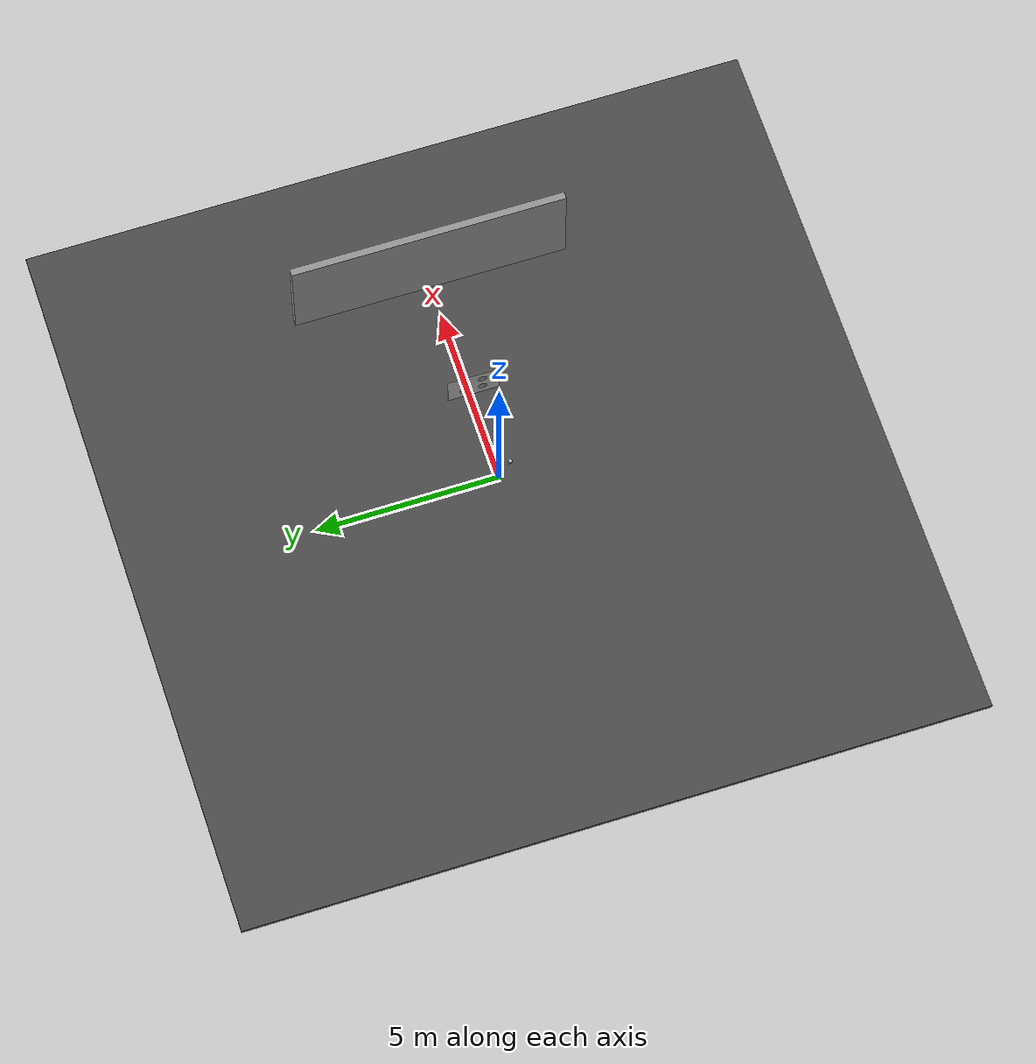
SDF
<sdf version="1.6">
 <world name="default">
  <light name="sun" type="directional">
   <pose>0 0 10 0 -0 0</pose>
   <diffuse>0.8 0.8 0.8 1</diffuse>
   <specular>0.1 0.1 0.1 1</specular>
   <attenuation>
    <range>1000</range>
    <constant>0.9</constant>
    <linear>0.01</linear>
    <quadratic>0.001</quadratic>
   </attenuation>
   <direction>-0.5 0.5 -1</direction>
  </light>
  <gravity>0 0 -9.8</gravity>
  <magnetic_field>6e-06 2.3e-05 -4.2e-05</magnetic_field>
  <atmosphere type="adiabatic"/>
  <physics name="default_physics" default="0" type="ode">
   <max_step_size>0.001</max_step_size>
   <real_time_factor>1</real_time_factor>
   <real_time_update_rate>1000</real_time_update_rate>
  </physics>
  <scene><ambient>0.4 0.4 0.4 1</ambient><background>0.7 0.7 0.7 1</background><shadows>1</shadows></scene>
  <spherical_coordinates>
   <surface_model>EARTH_WGS84</surface_model>
   <latitude_deg>0</latitude_deg>
   <longitude_deg>0</longitude_deg>
   <elevation>0</elevation>
   <heading_deg>0</heading_deg>
  </spherical_coordinates>
  <model name="asphalt_plane">
   <static>1</static>
   <link name="link">
    <collision name="collision"><geometry><box><size>20 20 0.1</size></box></geometry></collision>
    <visual name="visual">
     <cast_shadows>0</cast_shadows>
     <geometry><box><size>20 20 0.1</size></box></geometry>
     <material>
      <script>
       <uri>model://asphalt_plane/materials/scripts</uri>
       <uri>model://asphalt_plane/materials/textures</uri>
       <name>vrc/asphalt</name>
      </script>
     </material>
    </visual>
   </link>
   <pose>0 0 -0.05 0 -0 0</pose>
  </model>
  <model name="grey_wall">
   <static>1</static>
   <link name="link">
    <pose>0 0 1.4 0 -0 0</pose>
    <collision name="collision"><geometry><box><size>7.5 0.2 2.8</size></box></geometry></collision>
    <visual name="visual">
     <cast_shadows>0</cast_shadows>
     <geometry><box><size>7.5 0.2 2.8</size></box></geometry>
     <material>
      <script>
       <uri>model://grey_wall/materials/scripts</uri>
       <uri>model://grey_wall/materials/textures</uri>
       <name>vrc/grey_wall</name>
      </script>
     </material>
    </visual>
   </link>
   <pose>6 0 0 0 -0 1.57</pose>
  </model>
  <model name="calibration_bigqr_pattern">
   <pose>2.19 0 1.3 0 0 -3.14159</pose>
   <static>1</static>
   <link name="body">
    <visual name="visual">
     <geometry>
      <mesh><uri>model://calibration_bigqr_pattern/meshes/newbig.dae</uri><scale>1 1 1</scale></mesh>
     </geometry>
    </visual>
    <collision name="collision">
     <geometry>
      <mesh><uri>model://calibration_bigqr_pattern/meshes/newbig.stl</uri><scale>1 1 1</scale></mesh>
     </geometry>
    </collision>
   </link>
  </model>
  <model name="bumblebee_xb3">
   <pose>0 -0.3 0.8 -0 -0.2 0.2</pose>
   <static>1</static>
   <link name="link">
    <inertial>
     <mass>0.1</mass>
     <inertia>
      <ixx>0.000166667</ixx>
      <iyy>0.000166667</iyy>
      <izz>0.000166667</izz>
      <ixy>0</ixy>
      <ixz>0</ixz>
      <iyz>0</iyz>
     </inertia>
    </inertial>
    <visual name="visual"><geometry><box><size>0.1 0.1 0.1</size></box></geometry></visual>
    <sensor name="stereo_camera" type="multicamera">
     <visualize>1</visualize>
     <update_rate>10</update_rate>
     <camera name="left">
      <horizontal_fov>0.750492</horizontal_fov>
      <image><width>1280</width><height>960</height><format>R8G8B8</format></image>
      <clip><near>0.02</near><far>300</far></clip>
      <noise><type>gaussian</type><mean>0</mean><stddev>0.007</stddev></noise>
     </camera>
     <camera name="right">
      <pose>0 -0.12 0 0 -0 0</pose>
      <horizontal_fov>0.750492</horizontal_fov>
      <image><width>1280</width><height>960</height><format>R8G8B8</format></image>
      <clip><near>0.02</near><far>300</far></clip>
      <noise><type>gaussian</type><mean>0</mean><stddev>0.007</stddev></noise>
     </camera>
     <plugin name="stereo_camera_controller" filename="libgazebo_ros_multicamera.so">
      <alwaysOn>true</alwaysOn>
      <updateRate>0.0</updateRate>
      <cameraName>stereo_camera/</cameraName>
      <imageTopicName>image_rect_color</imageTopicName>
      <cameraInfoTopicName>camera_info</cameraInfoTopicName>
      <frameName>stereo_camera</frameName>
      <hackBaseline>0.12</hackBaseline>
      <distortionK1>0.0</distortionK1>
      <distortionK2>0.0</distortionK2>
      <distortionK3>0.0</distortionK3>
      <distortionT1>0.0</distortionT1>
      <distortionT2>0.0</distortionT2>
     </plugin>
    </sensor>
   </link>
  </model>
 </world>
</sdf>
